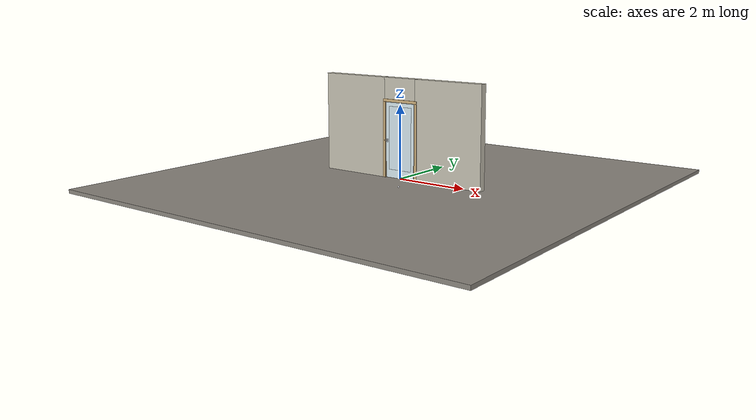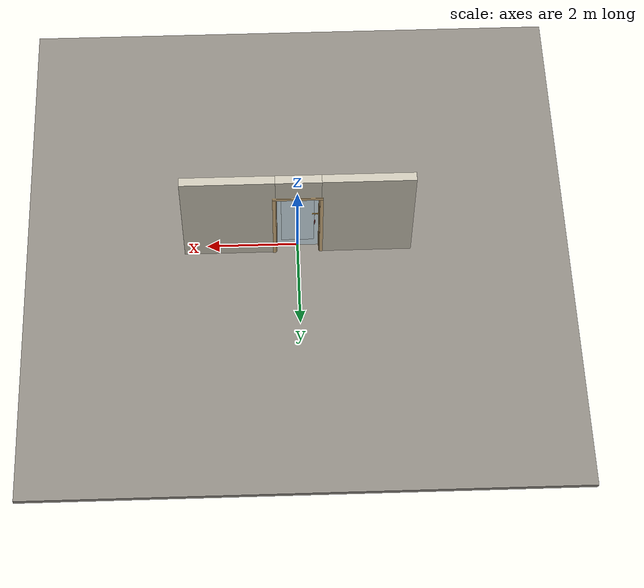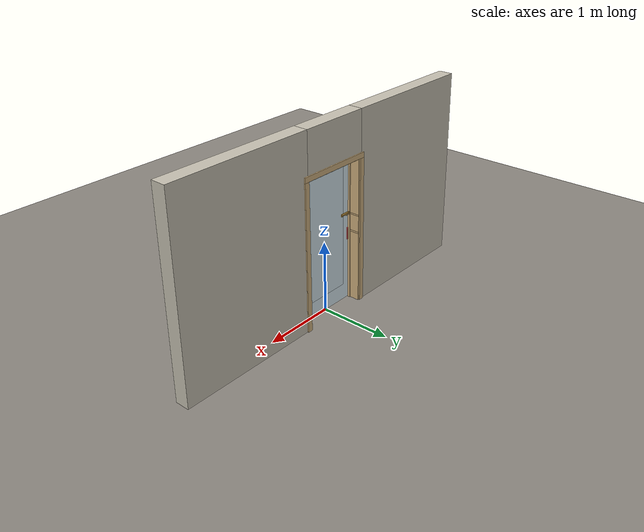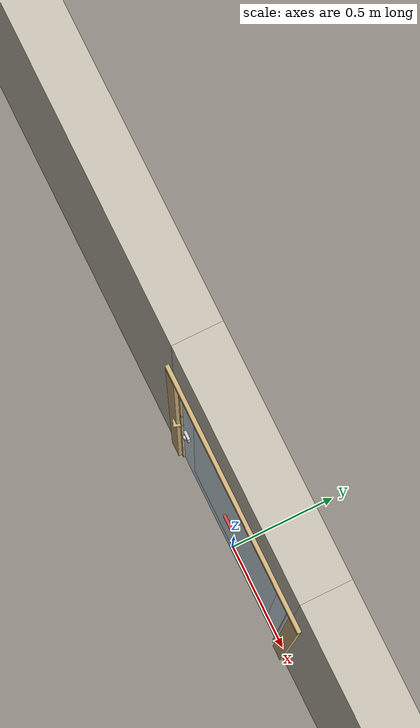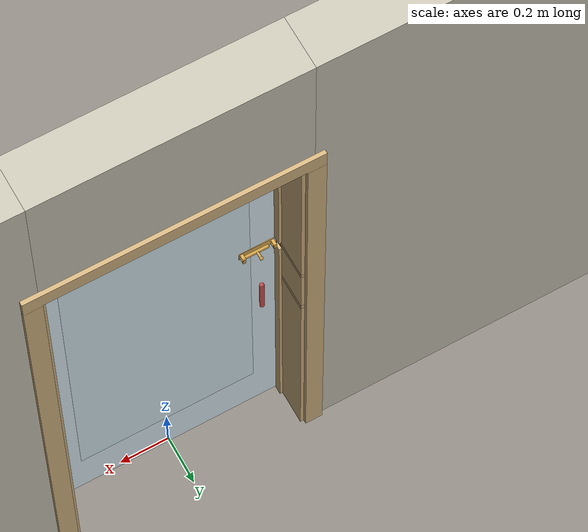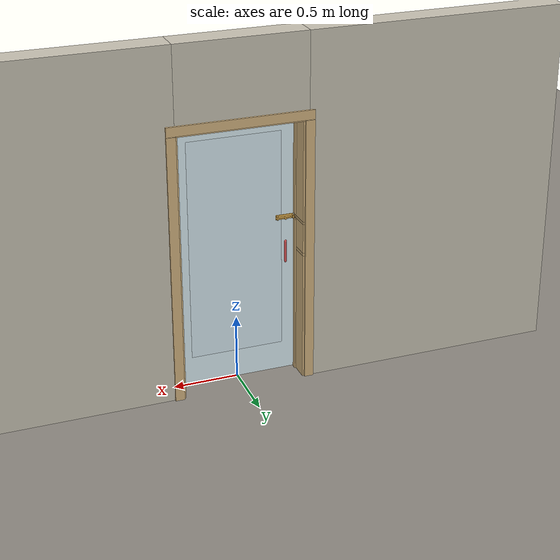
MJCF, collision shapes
<?xml version="1.0" ?>
<mujoco model="db0956_swing_single_full">
  <compiler angle="radian" meshdir="../../hardware" texturedir="../../textures" autolimits="true" inertiafromgeom="false"/>
  <option timestep="0.002" integrator="implicitfast" cone="elliptic" impratio="10" noslip_iterations="3">
    <flag multiccd="enable"/>
  </option>
  <size memory="16M"/>
  <default>
    <geom condim="4" solref="0.005 1" solimp="0.95 0.99 0.001"/>
    <joint solreflimit="0.005 1" solimplimit="0.95 0.99 0.001"/>
    <tendon solreflimit="0.005 1"/>
    <equality solref="0.002 1"/>
  </default>
  <visual>
    <headlight ambient="0.4 0.4 0.4" diffuse="0.7 0.7 0.7" specular="0.2 0.2 0.2"/>
    <quality shadowsize="4096"/>
    <map znear="0.01" zfar="60"/>
  </visual>
  <asset>
    <mesh name="knocker_a8f2ce0ad7" file="knocker_a8f2ce0ad7.obj"/>
    <mesh name="pull_1e5d69a91a" file="pull_1e5d69a91a.obj"/>
    <material name="mat_floor" rgba="0.55 0.53 0.5 1" specular="0.2" shininess="0.15" reflectance="0"/>
    <material name="mat_wall" rgba="0.78 0.76 0.7 1" specular="0.2" shininess="0.1" reflectance="0"/>
    <material name="mat_leaf" rgba="0.85 0.92 0.95 0.25" specular="0.2" shininess="0.95" reflectance="0.1"/>
    <material name="mat_glass" rgba="0.85 0.92 0.95 0.25" specular="0.2" shininess="0.95" reflectance="0.1"/>
    <material name="mat_hinge" rgba="0.65 0.66 0.68 1" specular="0.74" shininess="0.5" reflectance="0.36"/>
    <material name="mat_op_aluminum" rgba="0.8 0.81 0.83 1" specular="0.8" shininess="0.6" reflectance="0.4"/>
    <material name="mat_op_stainless" rgba="0.75 0.76 0.77 1" specular="0.8" shininess="0.65" reflectance="0.4"/>
    <material name="mat_bolt" rgba="0.85 0.66 0.3 1" specular="0.8" shininess="0.75" reflectance="0.4"/>
    <material name="mat_op_brass" rgba="0.85 0.66 0.3 1" specular="0.8" shininess="0.75" reflectance="0.4"/>
    <material name="mat_frame" rgba="0.82 0.7 0.5 1" specular="0.2" shininess="0.45" reflectance="0"/>
    <material name="mat_seal" rgba="0.1 0.1 0.1 1" specular="0.2" shininess="0.1" reflectance="0"/>
    <material name="mat_knocker" rgba="0.55 0.42 0.22 1" specular="0.74" shininess="0.45" reflectance="0.36"/>
    <material name="mat_stop" rgba="0.9 0.9 0.92 1" specular="0.8" shininess="0.9" reflectance="0.4"/>
    <texture name="skybox" type="skybox" builtin="gradient" rgb1="0.6 0.7 0.85" rgb2="0.9 0.92 0.95" width="256" height="256"/>
  </asset>
  <worldbody>
    <light name="sun" pos="1.5 -2.5 4" dir="-0.3 0.5 -0.8" directional="true" diffuse="0.8 0.8 0.8" specular="0.3 0.3 0.3" castshadow="true"/>
    <light name="fill" pos="-1.5 2.5 3" dir="0.3 -0.5 -0.7" directional="true" diffuse="0.35 0.35 0.4" castshadow="false"/>
    <camera name="robot_view" pos="0 -2.461688 1.734312" xyaxes="1 0 0 0 0.26963 0.962964" fovy="52"/>
    <camera name="far_view" pos="0 2.622687 1.734312" xyaxes="-1 0 0 0 -0.26963 0.962964" fovy="52"/>
    <camera name="iso" pos="-1.932062 -2.054938 2.141063" xyaxes="0.741536 -0.670913 0 0.242917 0.268487 0.932151" fovy="46"/>
    <camera name="detail_handle" pos="-0.1865 -0.7275 1.296" xyaxes="0.97561 0.219512 0 -0.070934 0.315262 0.94635" fovy="38"/>
    <geom name="floor" type="box" size="6 6 0.05" pos="0 0 -0.05" material="mat_floor" group="0" contype="1" conaffinity="1" friction="0.8 0.005 0.0001" density="2400"/>
    <geom name="wall_left" type="box" size="0.99525 0.1 1.35" pos="-1.50475 0.0805 1.35" material="mat_wall" group="0" contype="1" conaffinity="1" friction="0.6 0.005 0.0001" density="800"/>
    <geom name="wall_right" type="box" size="1.01025 0.1 1.35" pos="1.48975 0.0805 1.35" material="mat_wall" group="0" contype="1" conaffinity="1" friction="0.6 0.005 0.0001" density="800"/>
    <geom name="wall_header" type="box" size="0.4945 0.1 0.303" pos="-0.015 0.0805 2.397" material="mat_wall" group="0" contype="1" conaffinity="1" friction="0.6 0.005 0.0001" density="800"/>
    <geom name="leaf_aux_bolt_keeper_b" type="box" size="0.014 0.003 0.0005" pos="-0.46 0.0245 1.253" quat="0.5 0.5 0.5 0.5" material="mat_op_brass" group="1" contype="0" conaffinity="0" density="7800"/>
    <geom name="leaf_aux_bolt_keeper_l" type="box" size="0.003 0.01 0.0005" pos="-0.46 0.0135 1.266" quat="0.5 0.5 0.5 0.5" material="mat_op_brass" group="1" contype="0" conaffinity="0" density="7800"/>
    <geom name="leaf_aux_bolt_keeper_t" type="box" size="0.014 0.003 0.0005" pos="-0.46 0.0245 1.279" quat="0.5 0.5 0.5 0.5" material="mat_op_brass" group="1" contype="0" conaffinity="0" density="7800"/>
    <geom name="leaf_aux_bolt_keeper_r" type="box" size="0.003 0.01 0.0005" pos="-0.46 0.0355 1.266" quat="0.5 0.5 0.5 0.5" material="mat_op_brass" group="1" contype="0" conaffinity="0" density="7800"/>
    <geom name="jamb_hinge" type="box" size="0.0095 0.1 1.0225" pos="0.47 0.0805 1.0225" material="mat_frame" group="0" contype="1" conaffinity="1" friction="0.6 0.005 0.0001" density="400"/>
    <geom name="strike_1016_wall_n" type="box" size="0.0245 0.0875 0.0115" pos="-0.485 0.093 1.016" material="mat_frame" group="0" contype="1" conaffinity="1" friction="0.6 0.005 0.0001" density="400"/>
    <geom name="strike_1016_wall_p" type="box" size="0.0245 0.008 0.0115" pos="-0.485 -0.0135 1.016" material="mat_frame" group="0" contype="1" conaffinity="1" friction="0.6 0.005 0.0001" density="400"/>
    <geom name="strike_1016_ramp" type="box" size="0.0245 0.015977 0.0115" pos="-0.489002 -0.028066 1.016" quat="0.984601 0 0 -0.174819" material="mat_frame" group="0" contype="1" conaffinity="1" friction="0.12 0.005 0.0001" density="400"/>
    <geom name="strike_1016_back" type="box" size="0.0175 0.0055 0.0115" pos="-0.492 0 1.016" material="mat_frame" group="0" contype="1" conaffinity="1" friction="0.6 0.005 0.0001" density="400"/>
    <geom name="strike_1266_wall_n" type="box" size="0.0245 0.074 0.01" pos="-0.485 0.1065 1.266" material="mat_frame" group="0" contype="1" conaffinity="1" friction="0.6 0.005 0.0001" density="400"/>
    <geom name="strike_1266_wall_p" type="box" size="0.0245 0.018 0.01" pos="-0.485 -0.0015 1.266" material="mat_frame" group="0" contype="1" conaffinity="1" friction="0.6 0.005 0.0001" density="400"/>
    <geom name="strike_1266_back" type="box" size="0.0125 0.008 0.01" pos="-0.497 0.0245 1.266" material="mat_frame" group="0" contype="1" conaffinity="1" friction="0.6 0.005 0.0001" density="400"/>
    <geom name="jamb_strike_0" type="box" size="0.0245 0.1 0.50225" pos="-0.485 0.0805 0.50225" material="mat_frame" group="0" contype="1" conaffinity="1" friction="0.6 0.005 0.0001" density="400"/>
    <geom name="jamb_strike_1" type="box" size="0.0245 0.1 0.11425" pos="-0.485 0.0805 1.14175" material="mat_frame" group="0" contype="1" conaffinity="1" friction="0.6 0.005 0.0001" density="400"/>
    <geom name="jamb_strike_2" type="box" size="0.0245 0.1 0.3845" pos="-0.485 0.0805 1.6605" material="mat_frame" group="0" contype="1" conaffinity="1" friction="0.6 0.005 0.0001" density="400"/>
    <geom name="jamb_head" type="box" size="0.4945 0.1 0.0095" pos="-0.015 0.0805 2.0545" material="mat_frame" group="0" contype="1" conaffinity="1" friction="0.6 0.005 0.0001" density="400"/>
    <geom name="head_stud" type="box" size="0.4945 0.1 0.015" pos="-0.015 0.0805 2.079" material="mat_wall" group="0" contype="1" conaffinity="1" friction="0.6 0.005 0.0001" density="500"/>
    <geom name="stop_hinge" type="box" size="0.0055 0.016 1.0225" pos="0.455 0.029 1.0225" material="mat_frame" group="0" contype="1" conaffinity="1" friction="0.6 0.005 0.0001" density="400"/>
    <geom name="stop_strike" type="box" size="0.0055 0.016 0.622" pos="-0.455 0.029 0.622" material="mat_frame" group="0" contype="1" conaffinity="1" friction="0.6 0.005 0.0001" density="400"/>
    <geom name="stop_strike_1" type="box" size="0.0055 0.016 0.3785" pos="-0.455 0.029 1.6665" material="mat_frame" group="0" contype="1" conaffinity="1" friction="0.6 0.005 0.0001" density="400"/>
    <geom name="stop_head" type="box" size="0.4605 0.016 0.0055" pos="0 0.029 2.0395" material="mat_frame" group="0" contype="1" conaffinity="1" friction="0.6 0.005 0.0001" density="400"/>
    <geom name="seal_hinge" type="box" size="0.004 0.003 1.0225" pos="0.4575 0.0155 1.0225" material="mat_seal" group="1" contype="0" conaffinity="0" density="1100"/>
    <geom name="seal_strike" type="box" size="0.004 0.003 0.622" pos="-0.4575 0.0155 0.622" material="mat_seal" group="1" contype="0" conaffinity="0" density="1100"/>
    <geom name="seal_strike_1" type="box" size="0.004 0.003 0.3785" pos="-0.4575 0.0155 1.6665" material="mat_seal" group="1" contype="0" conaffinity="0" density="1100"/>
    <geom name="seal_head" type="box" size="0.4405 0.003 0.008" pos="0 0.0155 2.033" material="mat_seal" group="1" contype="0" conaffinity="0" density="1100"/>
    <geom name="casing_l_n" type="box" size="0.035 0.008 1.032" pos="-0.5095 -0.0275 1.0225" material="mat_frame" group="2" contype="0" conaffinity="0" density="400"/>
    <geom name="casing_r_n" type="box" size="0.035 0.008 1.032" pos="0.5095 -0.0275 1.0225" material="mat_frame" group="2" contype="0" conaffinity="0" density="400"/>
    <geom name="casing_h_n" type="box" size="0.5445 0.008 0.035" pos="0 -0.0275 2.094" material="mat_frame" group="2" contype="0" conaffinity="0" density="400"/>
    <geom name="casing_l_p" type="box" size="0.035 0.008 1.032" pos="-0.5095 0.1885 1.0225" material="mat_frame" group="2" contype="0" conaffinity="0" density="400"/>
    <geom name="casing_r_p" type="box" size="0.035 0.008 1.032" pos="0.5095 0.1885 1.0225" material="mat_frame" group="2" contype="0" conaffinity="0" density="400"/>
    <geom name="casing_h_p" type="box" size="0.5445 0.008 0.035" pos="0 0.1885 2.094" material="mat_frame" group="2" contype="0" conaffinity="0" density="400"/>
    <geom name="floor_stop_dome" type="sphere" size="0.025" pos="0.545135 -0.791701 0" material="mat_stop" group="0" contype="1" conaffinity="1" friction="0.6 0.005 0.0001" density="7000"/>
    <site name="approach_point" pos="0 -1.5 0" quat="1 0 0 0" size="0.05" rgba="0.2 0.9 0.2 0.5" group="4"/>
    <site name="goal_point" pos="0 1.5 0" quat="1 0 0 0" size="0.05" rgba="0.2 0.9 0.2 0.5" group="4"/>
    <site name="door_plane_center" pos="0 0 1.0225" quat="1 0 0 0" size="0.02" rgba="0.2 0.9 0.2 0.5" group="4"/>
    <body name="leaf" pos="0.4605 0 0">
      <inertial pos="-0.437372 0.000205 1.027036" mass="34.458088" quat="0.503656 0.494708 -0.505215 0.496339" diaginertia="2.939375291 11.284858588 14.210924963"/>
      <joint name="leaf_hinge" type="hinge" axis="0 0 1" pos="-0.003 -0.0195 0" limited="true" range="0 1.658063" solreflimit="0.02 1" damping="0.30611" frictionloss="1.708729" armature="0.02"/>
      <geom name="leaf_slab" type="box" size="0.457 0.0125 1.016" pos="-0.46 0 1.025" material="mat_leaf" group="0" contype="1" conaffinity="1" friction="0.4 0.005 0.0001" density="1"/>
      <geom name="leaf_glass_0" type="box" size="0.35646 0.0133 0.85344" pos="-0.46 0 1.08596" material="mat_glass" group="1" contype="0" conaffinity="0" density="1"/>
      <geom name="hinge_continuous" type="cylinder" size="0.0088 1.006" pos="-0.003 -0.0195 1.025" material="mat_hinge" group="1" contype="0" conaffinity="0" density="2700"/>
      <geom name="leaf_inside_pull_p" type="mesh" mesh="pull_1e5d69a91a" pos="-0.827 0.0125 1.016" quat="0 0 0.707107 0.707107" material="mat_op_stainless" group="1" contype="0" conaffinity="0" density="3000"/>
      <geom name="leaf_inside_pull_col_p" type="capsule" size="0.0095 0.08" pos="-0.827 0.0725 1.016" material="mat_op_stainless" group="3" contype="1" conaffinity="1" rgba="0.8 0.3 0.3 0.25" friction="0.7 0.01 0.0001" density="3000"/>
      <geom name="leaf_pushbutton_housing" type="box" size="0.02 0.006 0.045" pos="-0.872 -0.0185 1.016" material="mat_op_aluminum" group="1" contype="0" conaffinity="0" density="2700"/>
      <geom name="leaf_latch_bolt_faceplate" type="box" size="0.0006 0.01 0.0215" pos="-0.9164 0 1.016" material="mat_bolt" group="1" contype="0" conaffinity="0" density="8500"/>
      <geom name="leaf_aux_bolt_plate" type="box" size="0.0685 0.019 0.001" pos="-0.8405 0.0135 1.266" quat="0 0 0.707107 0.707107" material="mat_op_brass" group="1" contype="0" conaffinity="0" density="7800"/>
      <geom name="leaf_aux_bolt_guide_0_leg_n" type="box" size="0.006 0.002 0.0125" pos="-0.901 0.025 1.255" quat="0 0 0.707107 0.707107" material="mat_op_brass" group="1" contype="0" conaffinity="0" density="7800"/>
      <geom name="leaf_aux_bolt_guide_0_leg_p" type="box" size="0.006 0.002 0.0125" pos="-0.901 0.025 1.277" quat="0 0 0.707107 0.707107" material="mat_op_brass" group="1" contype="0" conaffinity="0" density="7800"/>
      <geom name="leaf_aux_bolt_guide_0_bridge" type="box" size="0.006 0.013 0.002" pos="-0.901 0.0355 1.266" quat="0 0 0.707107 0.707107" material="mat_op_brass" group="1" contype="0" conaffinity="0" density="7800"/>
      <geom name="leaf_aux_bolt_guide_1_leg_n" type="box" size="0.006 0.002 0.0125" pos="-0.782 0.025 1.255" quat="0 0 0.707107 0.707107" material="mat_op_brass" group="1" contype="0" conaffinity="0" density="7800"/>
      <geom name="leaf_aux_bolt_guide_1_leg_p" type="box" size="0.006 0.002 0.0125" pos="-0.782 0.025 1.277" quat="0 0 0.707107 0.707107" material="mat_op_brass" group="1" contype="0" conaffinity="0" density="7800"/>
      <geom name="leaf_aux_bolt_guide_1_bridge" type="box" size="0.006 0.013 0.002" pos="-0.782 0.0355 1.266" quat="0 0 0.707107 0.707107" material="mat_op_brass" group="1" contype="0" conaffinity="0" density="7800"/>
      <site name="leaf_inside_pull_grip_p" pos="-0.827 0.0725 1.016" quat="1 0 0 0" size="0.012" rgba="0.2 0.9 0.2 0.5" group="4"/>
      <site name="leaf_edge_mid" pos="-0.917 0 1.016" quat="1 0 0 0" size="0.02" rgba="0.2 0.9 0.2 0.5" group="4"/>
      <body name="leaf_pushbutton" pos="-0.872 -0.0225 1.016">
        <inertial pos="0 -0.006 0" mass="0.010179" quat="0 0 0.707107 0.707107" diaginertia="0.000000377 0.000000377 0.000000509"/>
        <joint name="leaf_pushbutton_slide" type="slide" axis="0 1 0" limited="true" range="0 0.006" damping="16.008936" frictionloss="0.5" stiffness="400" springref="-0.0075" armature="0.15"/>
        <geom name="leaf_pushbutton_geom" type="cylinder" size="0.01 0.006" pos="0 -0.006 0" quat="0.707107 -0.707107 0 0" material="mat_op_aluminum" group="0" contype="1" conaffinity="1" friction="0.6 0.005 0.0001" density="2700"/>
        <site name="leaf_push" pos="0 -0.012 0" quat="1 0 0 0" size="0.01" rgba="0.2 0.9 0.2 0.5" group="4"/>
      </body>
      <body name="leaf_latch_bolt" pos="-0.917 0 1.016">
        <inertial pos="0.008 0 0" mass="0.014242" quat="0 0 -0.707107 0.707107" diaginertia="0.00000011 0.000001386 0.000001386"/>
        <joint name="leaf_latch_bolt_slide" type="slide" axis="1 0 0" limited="true" range="0 0.01" damping="2" frictionloss="0.3" stiffness="300" springref="-0.006667" armature="0.1"/>
        <geom name="leaf_latch_bolt_capsule" type="capsule" size="0.004 0.014" pos="0.008 0 0" quat="0.707107 0 -0.707107 0" material="mat_bolt" group="0" contype="1" conaffinity="1" friction="0.2 0.005 0.0001" density="8500"/>
      </body>
      <body name="leaf_aux_bolt" pos="-0.917 0.0245 1.266">
        <inertial pos="0.082287 0.00492 0" mass="0.111784" quat="0.999932 0 0 -0.011627" diaginertia="0.000012853 0.000066972 0.000077936"/>
        <joint name="leaf_aux_bolt_slide" type="slide" axis="1 0 0" limited="true" range="0 0.045" damping="1" frictionloss="1" armature="0.1" ref="0.045"/>
        <geom name="leaf_aux_bolt_rod" type="capsule" size="0.006 0.044" pos="0.083 0 0" quat="0.707107 0 -0.707107 0" material="mat_op_brass" group="0" contype="1" conaffinity="1" friction="0.6 0.005 0.0001" density="7850"/>
        <geom name="leaf_aux_bolt_knob" type="capsule" size="0.005 0.01" pos="0.08 0.015 0" quat="0.707107 -0.707107 0 0" material="mat_op_brass" group="0" contype="1" conaffinity="1" friction="0.6 0.005 0.0001" density="7850"/>
        <geom name="leaf_aux_bolt_knob_end" type="sphere" size="0.00675" pos="0.08 0.03 0" material="mat_op_brass" group="1" contype="0" conaffinity="0" density="7850"/>
        <site name="leaf_aux_bolt_grip" pos="0.08 0.034 0" quat="1 0 0 0" size="0.012" rgba="0.2 0.9 0.2 0.5" group="4"/>
      </body>
      <body name="knocker" pos="-0.46 -0.0125 1.289">
        <inertial pos="0 -0.010216 0.001203" mass="0.814961" quat="0.49606 0.50391 0.50391 -0.49606" diaginertia="0.000611431 0.001116108 0.001534609"/>
        <joint name="knocker_hinge" type="hinge" axis="-1 0 0" pos="0 0 0.055" limited="true" range="0 0.6" damping="0.005" armature="0.002"/>
        <geom name="knocker_mesh" type="mesh" mesh="knocker_a8f2ce0ad7" pos="0 0 0" quat="0 0 -0.707107 0.707107" material="mat_knocker" group="2" contype="0" conaffinity="0" density="8500"/>
        <geom name="knocker_col" type="capsule" size="0.007 0.03" pos="0 -0.025 -0.01" quat="0.707107 0 0.707107 0" material="mat_knocker" group="3" contype="1" conaffinity="1" rgba="0.8 0.3 0.3 0.25" friction="0.6 0.005 0.0001" density="8500"/>
      </body>
    </body>
  </worldbody>
  <tendon>
    <fixed name="leaf_latch_bolt_coupling" limited="true" range="0 10">
      <joint joint="leaf_latch_bolt_slide" coef="1"/>
      <joint joint="leaf_pushbutton_slide" coef="-2"/>
    </fixed>
  </tendon>
  <sensor>
    <jointpos name="leaf_hinge_pos" joint="leaf_hinge"/>
    <jointvel name="leaf_hinge_vel" joint="leaf_hinge"/>
    <jointpos name="leaf_pushbutton_slide_pos" joint="leaf_pushbutton_slide"/>
    <jointvel name="leaf_pushbutton_slide_vel" joint="leaf_pushbutton_slide"/>
    <jointpos name="leaf_latch_bolt_slide_pos" joint="leaf_latch_bolt_slide"/>
    <jointvel name="leaf_latch_bolt_slide_vel" joint="leaf_latch_bolt_slide"/>
    <jointpos name="leaf_aux_bolt_slide_pos" joint="leaf_aux_bolt_slide"/>
    <jointvel name="leaf_aux_bolt_slide_vel" joint="leaf_aux_bolt_slide"/>
  </sensor>
</mujoco>
